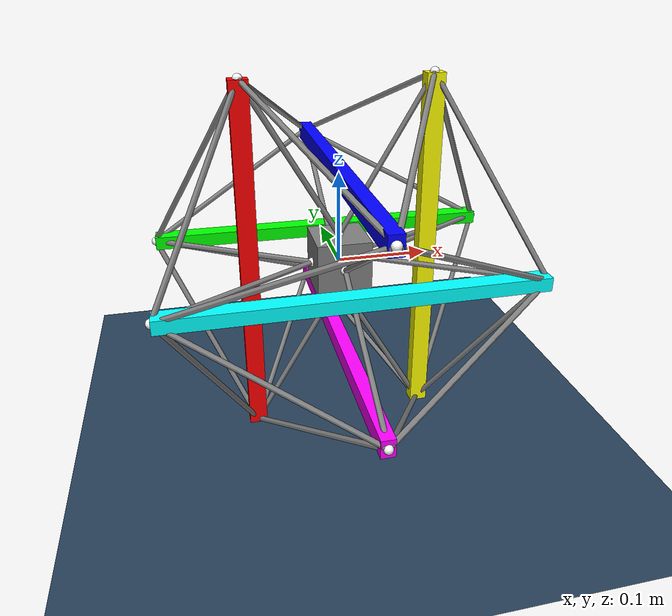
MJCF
<mujoco model="scene">
  <include file="tensegrity_gimbal.xml"/>

  <visual>
    <headlight diffuse="0.6 0.6 0.6" ambient="0.5 0.5 0.3" specular="0 0 0"/>
    </visual>

    <asset>
      <texture type="skybox" builtin="gradient" rgb1="0.3 0.5 0.7" rgb2="0.1 0.1 0.1" width="512" height="3072"/>
      <texture type="2d" name="groundplane" builtin="checker" mark="edge" rgb1="0.2 0.3 0.4" rgb2="0.1 0.2 0.3" markrgb="0.8 0.8 0.8" width="300" height="300"/>
      <material name="groundplane" texture="groundplane" texuniform="true" texrepeat="5 5"
        reflectance="0.2"/>
    </asset>

    <worldbody>
      <light pos="0 0 1.5" dir="0 0 -1" directional="true"/>
      <geom name="floor" pos="0 0 -0.2" size="0 0 0.05" type="plane" material="groundplane"/>
    </worldbody>

    <contact>
      <pair geom1="floor" geom2="link1" friction="1.0 1.0"/>
      <pair geom1="floor" geom2="link2" friction="1.0 1.0"/>
      <pair geom1="floor" geom2="link3" friction="1.0 1.0"/>
      <pair geom1="floor" geom2="link4" friction="1.0 1.0"/>
      <pair geom1="floor" geom2="link5" friction="1.0 1.0"/>
      <pair geom1="floor" geom2="link6" friction="1.0 1.0"/>
      <pair geom1="link1" geom2="link2"/>
      <pair geom1="link1" geom2="link3"/>
      <pair geom1="link1" geom2="link4"/>
      <pair geom1="link1" geom2="link5"/>
      <pair geom1="link1" geom2="link6"/>
      <pair geom1="link2" geom2="link3"/>
      <pair geom1="link2" geom2="link4"/>
      <pair geom1="link2" geom2="link5"/>
      <pair geom1="link2" geom2="link6"/>
      <pair geom1="link3" geom2="link4"/>
      <pair geom1="link3" geom2="link5"/>
      <pair geom1="link3" geom2="link6"/>
      <pair geom1="link4" geom2="link5"/>
      <pair geom1="link4" geom2="link6"/>
      <pair geom1="link5" geom2="link6"/>
    </contact>

  </mujoco>

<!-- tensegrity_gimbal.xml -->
<mujoco model="tensegrity">
  <option timestep="0.002" collision="predefined"/>
  <default>
    <site size="0.005" rgba="1 1 1 1"/>
    <default class="tendon_actuator">
      <general ctrllimited="true" ctrlrange="-6.0 0" dyntype="filter" dynprm="0.02"/> <!-- for real2sim -->
    </default>
    <default class="tendon_spatial">
      <tendon damping="5" stiffness="50" frictionloss="0.5"/>
    </default>
  </default>
  <worldbody>
    <light pos="0 1 1" dir="0 -1 -1" diffuse="1 1 1"/>

      <!-- link -->
    <body name="link1" pos="-0.1 0 0">
      <geom name="link1" type="box" size="0.01 0.0075 0.2" mass="0.1" rgba="1 0 0 1" pos="0 0 0"/>
      <joint name="link1" type="free"/>
      <site name="link1_top" pos="0 0.00 0.2"/>
      <site name="link1_bottom" pos="0 0.00 -0.2"/>
      <site name="imu" pos="0.0 0 0"/>
    </body>

    <body name="link2" pos="0.1 0 0">
      <geom name="link2" type="box" size="0.01 0.0075 0.2" mass="0.1" rgba="1 1 0 1" pos="0 0 0"/>
      <joint name="link2" type="free"/>
      <site name="link2_top" pos="0.0 0.00 0.2"/>
      <site name="link2_bottom" pos="0.0 0.00 -0.2"/>
    </body>

    <body name="link3" pos="0 0.1 0">
      <geom name="link3" type="box" size="0.2 0.01 0.0075" mass="0.1" rgba="0 1 0 1" pos="0 0 0"/>
      <joint name="link3" type="free"/>
      <site name="link3_top" pos="0.2 0.0 0.0"/>
      <site name="link3_bottom" pos="-0.2 0.0 0.0"/>
    </body>

    <body name="link4" pos="0 -0.1 0">
      <geom name="link4" type="box" size="0.2 0.01 0.0075" mass="0.1" rgba="0 1 1 1" pos="0 0 0"/>
      <joint name="link4" type="free"/>
      <site name="link4_top" pos="0.2 0.0 0.0"/>
      <site name="link4_bottom" pos="-0.2 0.0 0.0"/>
    </body>

    <body name="link5" pos="0 0 0.1">
      <geom name="link5" type="box" size="0.0075 0.2 0.01" mass="0.1" rgba="0 0 1 1" pos="0 0 0"/>
      <joint name="link5" type="free"/>
      <site name="link5_top" pos="0.0 0.2 0.0"/>
      <site name="link5_bottom" pos="0.0 -0.2 0.0"/>
    </body>

    <body name="link6" pos="0 0 -0.1">
      <geom name="link6" type="box" size="0.0075 0.2 0.01" mass="0.1" rgba="1 0 1 1" pos="0 0 0"/>
      <joint name="link6" type="free"/>
      <site name="link6_top" pos="0.0 0.2 0.0"/>
      <site name="link6_bottom" pos="0.0 -0.2 0.0"/>
    </body>

    <body name="cube" pos="0 0 0">
      <joint name="cube" type="free"/>
      <geom name="cube" type="box" size="0.03 0.03 0.03" mass="0.1"/>
      <site name="cube_top" pos="0 0 0.03"/>
      <site name="cube_left" pos="-0.03 0 0"/>
      <site name="cube_right" pos="0.03 0 0"/>
      <site name="cube_forward" pos="0 -0.03 0"/>
      <site name="cube_backward" pos="0 0.03 0"/>
      <site name="cube_bottom" pos="0 0 -0.03"/>
    </body>

  </worldbody>

  <tendon>
    <!-- link1 -->
    <spatial name="link1t_3b" class="tendon_spatial">
      <site site="link1_top"/>
      <site site="link3_bottom"/>
    </spatial>
    <spatial name="link1t_4b" class="tendon_spatial">
      <site site="link1_top"/>
      <site site="link4_bottom"/>
    </spatial>
    <spatial name="link1b_3b" class="tendon_spatial">
      <site site="link1_bottom"/>
      <site site="link3_bottom"/>
    </spatial>
    <spatial name="link1b_4b" class="tendon_spatial">
      <site site="link1_bottom"/>
      <site site="link4_bottom"/>
    </spatial>
    <spatial name="link1b_6t" class="tendon_spatial">
      <site site="link1_bottom"/>
      <site site="link6_top"/>
    </spatial>
    <spatial name="link1b_6b" class="tendon_spatial">
      <site site="link1_bottom"/>
      <site site="link6_bottom"/>
    </spatial>
    <spatial name="link1t_5t" class="tendon_spatial">
      <site site="link1_top"/>
      <site site="link5_top"/>
    </spatial>
    <spatial name="link1t_5b" class="tendon_spatial">
      <site site="link1_top"/>
      <site site="link5_bottom"/>
    </spatial>

    <!-- link2 -->
    <spatial name="link2t_3t" class="tendon_spatial">
      <site site="link2_top"/>
      <site site="link3_top"/>
    </spatial>
    <spatial name="link2t_4t" class="tendon_spatial">
      <site site="link2_top"/>
      <site site="link4_top"/>
    </spatial>
    <spatial name="link2b_3t" class="tendon_spatial">
      <site site="link2_bottom"/>
      <site site="link3_top"/>
    </spatial>
    <spatial name="link2b_4t" class="tendon_spatial">
      <site site="link2_bottom"/>
      <site site="link4_top"/>
    </spatial>
    <spatial name="link2b_6t" class="tendon_spatial">
      <site site="link2_bottom"/>
      <site site="link6_top"/>
    </spatial>
    <spatial name="link2b_6b" class="tendon_spatial">
      <site site="link2_bottom"/>
      <site site="link6_bottom"/>
    </spatial>
    <spatial name="link2t_5t" class="tendon_spatial">
      <site site="link2_top"/>
      <site site="link5_top"/>
    </spatial>
    <spatial name="link2t_5b" class="tendon_spatial">
      <site site="link2_top"/>
      <site site="link5_bottom"/>
    </spatial>

    <!-- link3 -->
    <spatial name="link3t_5t" class="tendon_spatial">
      <site site="link3_top"/>
      <site site="link5_top"/>
    </spatial>
    <spatial name="link3b_5t" class="tendon_spatial">
      <site site="link3_bottom"/>
      <site site="link5_top"/>
    </spatial>
    <spatial name="link3t_6t" class="tendon_spatial">
      <site site="link3_top"/>
      <site site="link6_top"/>
    </spatial>
    <spatial name="link3b_6t" class="tendon_spatial">
      <site site="link3_bottom"/>
      <site site="link6_top"/>
    </spatial>

    <!-- link4 -->
    <spatial name="link4t_5b" class="tendon_spatial">
      <site site="link4_top"/>
      <site site="link5_bottom"/>
    </spatial>
    <spatial name="link4b_5b" class="tendon_spatial">
      <site site="link4_bottom"/>
      <site site="link5_bottom"/>
    </spatial>
    <spatial name="link4t_6b" class="tendon_spatial">
      <site site="link4_top"/>
      <site site="link6_bottom"/>
    </spatial>
    <spatial name="link4b_6b" class="tendon_spatial">
      <site site="link4_bottom"/>
      <site site="link6_bottom"/>
    </spatial>
    <spatial name="top_link1t" class="tendon_spatial">
      <site site="cube_top"/>
      <site site="link1_top"/>
    </spatial>
    <spatial name="top_link2t" class="tendon_spatial">
      <site site="cube_top"/>
      <site site="link2_top"/>
    </spatial>
    <spatial name="bottom_link1b" class="tendon_spatial">
      <site site="cube_bottom"/>
      <site site="link1_bottom"/>
    </spatial>
    <spatial name="bottom_link2b" class="tendon_spatial">
      <site site="cube_bottom"/>
      <site site="link2_bottom"/>
    </spatial>
    <spatial name="left_link3b" class="tendon_spatial">
      <site site="cube_left"/>
      <site site="link3_bottom"/>
    </spatial>
    <spatial name="left_link4b" class="tendon_spatial">
      <site site="cube_left"/>
      <site site="link4_bottom"/>
    </spatial>
    <spatial name="right_link3t" class="tendon_spatial">
      <site site="cube_right"/>
      <site site="link3_top"/>
    </spatial>
    <spatial name="right_link4t" class="tendon_spatial">
      <site site="cube_right"/>
      <site site="link4_top"/>
    </spatial>
    <spatial name="forward_link5b" class="tendon_spatial">
      <site site="cube_forward"/>
      <site site="link5_bottom"/>
    </spatial>
    <spatial name="forward_link6b" class="tendon_spatial">
      <site site="cube_forward"/>
      <site site="link6_bottom"/>
    </spatial>
    <spatial name="backward_link5t" class="tendon_spatial">
      <site site="cube_backward"/>
      <site site="link5_top"/>
    </spatial>
    <spatial name="backward_link6t" class="tendon_spatial">
      <site site="cube_backward"/>
      <site site="link6_top"/>
    </spatial>
  </tendon>

  <actuator>
    <!-- tention-controlled actuators-->
    <position name="top_link1t" tendon="top_link1t" kp="3" class="tendon_actuator"/>
    <position name="top_link2t" tendon="top_link2t" kp="3" class="tendon_actuator"/>
    <position name="bottom_link1b" tendon="bottom_link1b" kp="3" class="tendon_actuator"/>
    <position name="bottom_link2b" tendon="bottom_link2b" kp="3" class="tendon_actuator"/>
    <position name="right_link4t" tendon="right_link4t" kp="3" class="tendon_actuator"/>
    <position name="right_link3t" tendon="right_link3t" kp="3" class="tendon_actuator"/>
    <position name="left_link4b" tendon="left_link4b" kp="3" class="tendon_actuator"/>
    <position name="left_link3b" tendon="left_link3b" kp="3" class="tendon_actuator"/>
    <position name="forward_link5b" tendon="forward_link5b" kp="3" class="tendon_actuator"/>
    <position name="forward_link6b" tendon="forward_link6b" kp="3" class="tendon_actuator"/>
    <position name="backward_link6t" tendon="backward_link6t" kp="3" class="tendon_actuator"/>
    <position name="backward_link5t" tendon="backward_link5t" kp="3" class="tendon_actuator"/>
  </actuator>

  <sensor>
    <tendonpos name="link4t_5b" tendon="link4t_5b"/>
    <gyro name="gyro" site="imu"/>
    <accelerometer name="accelerometer" site="imu"/>
  </sensor>

</mujoco>
